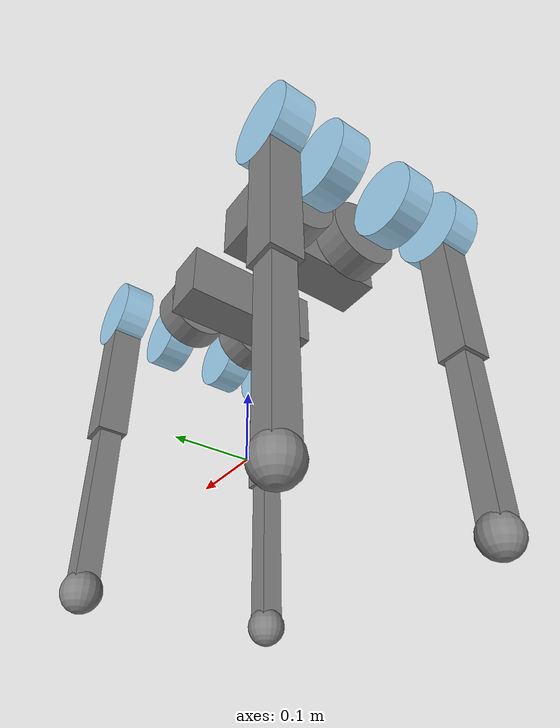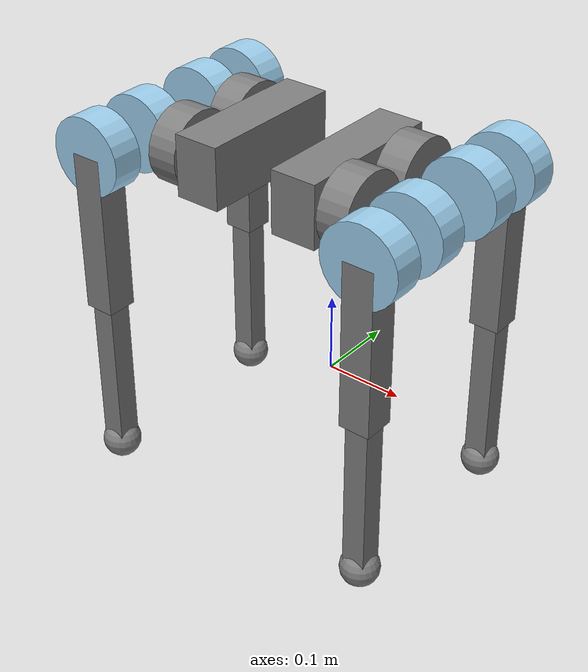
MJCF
<mujoco model="articulate-trunk-quadruped">
  <compiler angle="radian" meshdir="assets"/>
  <default>
    <default class="articulate-trunk-quadruped">
      <joint frictionloss="0.05" armature="0.072" damping="0"/>
    </default>
  </default>

  <option solver="PGS"/>

  <worldbody>
    <body name="base_link" pos="0 0 0.27" childclass="articulate-trunk-quadruped">
      <inertial pos="0.00916667 0 0" quat="0.5 0.5 -0.5 0.5" mass="3.456" diaginertia="0.0135912 0.0131328 0.003684"/>
      <joint type="free" name="world_to_base_link" frictionloss="0.0" armature="0.0"/>
      <geom size="0.03 0.04 0.1" pos="0.02 0 0" quat="9.38184e-07 9.38187e-07 0.707108 0.707105" type="box"/>
      <site name="base_link"/>
      <body name="hip_link_2" pos="0.05 -0.0515 0" quat="0.499998 -0.5 0.500002 -0.5">
        <inertial pos="0.0266667 0 0.0716667" quat="0.649356 0.279888 0.279888 0.649356" mass="0.603186" diaginertia="0.00202959 0.00178382 0.000999746"/>
        <joint name="HAA_FR" pos="0 0 0" axis="0 0 1" />
        <geom size="0.05 0.02" pos="0 0 0.023" quat="1.32679e-06 1 0 0" type="cylinder"/>
        <geom size="0.05 0.02" pos="0.08 0 0.096" quat="0.707105 0 -0.707108 0" type="cylinder" rgba="0.615686 0.811765 0.929412 1"/>
        <geom size="0.05 0.02" pos="0 0 0.096" quat="9.38184e-07 -0.707105 -9.38187e-07 -0.707108" type="cylinder" rgba="0.615686 0.811765 0.929412 1"/>
        <body name="thigh_link_3" pos="0.08 0 0.096" quat="0.707105 0 -0.707108 0">
          <inertial pos="0 0.105 0" quat="0.707107 0.707107 0 0" mass="1.29293" diaginertia="0.0049239 0.0049239 0.000344781"/>
          <joint name="HFE_FR" pos="0 0 0" axis="0 0 1" />
          <geom size="0.02 0.02 0.105" pos="0 0.105 0" quat="9.38184e-07 -9.38187e-07 -0.707108 0.707105" type="box"/>
          <body name="shank_link_3" pos="0 0.21 0" quat="1.32679e-06 0 0 1">
            <inertial pos="0 -0.105 0" quat="0.707107 0.707107 0 0" mass="0.198828" diaginertia="0.000745605 0.000745605 2.98242e-05"/>
            <joint name="KFE_FR" pos="0 0 0" axis="0 0 1"/>
            <geom size="0.015 0.015 0.105" pos="0 -0.105 0" quat="0.707105 -0.707108 0 0" type="box"/>
            <body name="foot_link_3" pos="0 -0.21 0" quat="0.499998 0.5 -0.5 0.500002">
              <inertial pos="0 0 0" mass="6.54498e-05" diaginertia="1.63625e-08 1.63625e-08 1.63625e-08"/>
              <geom name="foot_FR" size="0.025" />
            </body>
          </body>
        </body>
      </body>
      <body name="hip_link_mirrored_2" pos="0.05 0.0515 0" quat="0.499998 -0.5 0.500002 -0.5">
        <inertial pos="-0.0266667 0 0.0716667" quat="0.279888 0.649356 0.649356 0.279888" mass="0.603186" diaginertia="0.00202959 0.00178382 0.000999746"/>
        <joint name="HAA_FL" pos="0 0 0" axis="0 0 1" />
        <geom size="0.05 0.02" pos="0 0 0.023" quat="1.32679e-06 1 0 0" type="cylinder"/>
        <geom size="0.05 0.02" pos="-0.08 0 0.096" quat="0.707105 0 -0.707108 0" type="cylinder" rgba="0.615686 0.811765 0.929412 1"/>
        <geom size="0.05 0.02" pos="0 0 0.096" quat="9.38184e-07 -0.707105 -9.38187e-07 -0.707108" type="cylinder" rgba="0.615686 0.811765 0.929412 1"/>
        <body name="thigh_link_4" pos="-0.08 0 0.096" quat="0.707105 0 -0.707108 0">
          <inertial pos="0 0.105 0" quat="0.707107 0.707107 0 0" mass="1.29293" diaginertia="0.0049239 0.0049239 0.000344781"/>
          <joint name="HFE_FL" pos="0 0 0" axis="0 0 1" />
          <geom size="0.02 0.02 0.105" pos="0 0.105 0" quat="9.38184e-07 -9.38187e-07 -0.707108 0.707105" type="box"/>
          <body name="shank_link_4" pos="0 0.21 0" quat="1.32679e-06 0 0 1">
            <inertial pos="0 -0.105 0" quat="0.707107 0.707107 0 0" mass="0.198828" diaginertia="0.000745605 0.000745605 2.98242e-05"/>
            <joint name="KFE_FL" pos="0 0 0" axis="0 0 1"/>
            <geom size="0.015 0.015 0.105" pos="0 -0.105 0" quat="0.707105 -0.707108 0 0" type="box"/>
            <body name="foot_link_4" pos="0 -0.21 0" quat="0.499998 -0.5 0.5 0.500002">
              <inertial pos="0 0 0" mass="6.54498e-05" diaginertia="1.63625e-08 1.63625e-08 1.63625e-08"/>
              <geom name="foot_FL" size="0.025" />
            </body>
          </body>
        </body>
      </body>
      <body name="base_link_2" pos="-0.05 0 0" quat="0.707105 0.707108 0 0">
        <inertial pos="-0.0591667 0 0" quat="0.707107 0 0 0.707107" mass="3.456" diaginertia="0.0135912 0.0131328 0.003684"/>
        <joint name="trunk" pos="0 0 0" axis="0 0 1" />
        <geom size="0.03 0.04 0.1" pos="-0.07 0 0" type="box"/>
        <site name="base_link_2"/>
        <body name="hip_link" pos="-0.1 0 0.0515" quat="0.707105 0 0.707108 0">
          <inertial pos="-0.0266667 0 -0.0716667" quat="0.649356 0.279888 0.279888 0.649356" mass="0.603186" diaginertia="0.00202959 0.00178382 0.000999746"/>
          <joint name="HAA_HR" pos="0 0 0" axis="0 0 1" />
          <geom size="0.05 0.02" pos="0 0 -0.023" quat="1.32679e-06 0 0 1" type="cylinder"/>
          <geom size="0.05 0.02" pos="-0.08 0 -0.096" quat="0.707105 0 0.707108 0" type="cylinder" rgba="0.615686 0.811765 0.929412 1"/>
          <geom size="0.05 0.02" pos="0 0 -0.096" quat="9.38184e-07 -0.707105 9.38187e-07 0.707108" type="cylinder" rgba="0.615686 0.811765 0.929412 1"/>
          <body name="thigh_link" pos="-0.08 0 -0.096" quat="0.707105 0 0.707108 0">
            <inertial pos="0 -0.105 0" quat="0.707107 0.707107 0 0" mass="1.29293" diaginertia="0.0049239 0.0049239 0.000344781"/>
            <joint name="HFE_HR" pos="0 0 0" axis="0 0 1" />
            <geom size="0.02 0.02 0.105" pos="0 -0.105 0" quat="0.707105 -0.707108 0 0" type="box"/>
            <body name="shank_link" pos="0 -0.21 0" quat="1 0 0 0">
              <inertial pos="0 -0.105 0" quat="0.707107 0.707107 0 0" mass="0.198828" diaginertia="0.000745605 0.000745605 2.98242e-05"/>
              <joint name="KFE_HR" pos="0 0 0" axis="0 0 1"/>
              <geom size="0.015 0.015 0.105" pos="0 -0.105 0" quat="0.707105 -0.707108 0 0" type="box"/>
              <body name="foot_link" pos="0 -0.21 0" quat="0.499998 0.5 0.5 -0.500002">
                <inertial pos="0 0 0" mass="6.54498e-05" diaginertia="1.63625e-08 1.63625e-08 1.63625e-08"/>
                <geom name="foot_HR" size="0.025" />
              </body>
            </body>
          </body>
        </body>
        <body name="hip_link_mirrored" pos="-0.1 0 -0.0515" quat="0.707105 0 0.707108 0">
          <inertial pos="0.0266667 0 -0.0716667" quat="0.279888 0.649356 0.649356 0.279888" mass="0.603186" diaginertia="0.00202959 0.00178382 0.000999746"/>
          <joint name="HAA_HL" pos="0 0 0" axis="0 0 1" />
          <geom size="0.05 0.02" pos="0 0 -0.023" quat="1.32679e-06 0 0 -1" type="cylinder"/>
          <geom size="0.05 0.02" pos="0.08 0 -0.096" quat="0.707105 0 0.707108 0" type="cylinder" rgba="0.615686 0.811765 0.929412 1"/>
          <geom size="0.05 0.02" pos="0 0 -0.096" quat="9.38184e-07 -0.707105 9.38187e-07 0.707108" type="cylinder" rgba="0.615686 0.811765 0.929412 1"/>
          <body name="thigh_link_2" pos="0.08 0 -0.096" quat="0.707105 0 0.707108 0">
            <inertial pos="0 -0.105 0" quat="0.707107 0.707107 0 0" mass="1.29293" diaginertia="0.0049239 0.0049239 0.000344781"/>
            <joint name="HFE_HL" pos="0 0 0" axis="0 0 1" />
            <geom size="0.02 0.02 0.105" pos="0 -0.105 0" quat="0.707105 -0.707108 0 0" type="box"/>
            <body name="shank_link_2" pos="0 -0.21 0" quat="1 0 0 0">
              <inertial pos="0 -0.105 0" quat="0.707107 0.707107 0 0" mass="0.198828" diaginertia="0.000745605 0.000745605 2.98242e-05"/>
              <joint name="KFE_HL" pos="0 0 0" axis="0 0 1"/>
              <geom size="0.015 0.015 0.105" pos="0 -0.105 0" quat="0.707105 -0.707108 0 0" type="box"/>
              <body name="foot_link_2" pos="0 -0.21 0" quat="0.499998 0.5 0.5 -0.500002">
                <inertial pos="0 0 0" mass="6.54498e-05" diaginertia="1.63625e-08 1.63625e-08 1.63625e-08"/>
                <geom name="foot_HL" size="0.025" />
              </body>
            </body>
          </body>
        </body>
      </body>
    </body>
  </worldbody>

  <actuator>
    <general joint="HAA_FR" name="HAA_FR"/>
    <general joint="HFE_FR" name="HFE_FR"/>
    <general joint="KFE_FR" name="KFE_FR"/>
    <general joint="HAA_FL" name="HAA_FL"/>
    <general joint="HFE_FL" name="HFE_FL"/>
    <general joint="KFE_FL" name="KFE_FL"/>
    <general joint="trunk" name="trunk"/>
    <general joint="HAA_HR" name="HAA_HR"/>
    <general joint="HFE_HR" name="HFE_HR"/>
    <general joint="KFE_HR" name="KFE_HR"/>
    <general joint="HAA_HL" name="HAA_HL"/>
    <general joint="HFE_HL" name="HFE_HL"/>
    <general joint="KFE_HL" name="KFE_HL"/>
  </actuator>

  <sensor>
    <framelinvel objtype="site" objname="base_link"/>
    <framelinvel objtype="site" objname="base_link_2"/>
  </sensor>

</mujoco>
